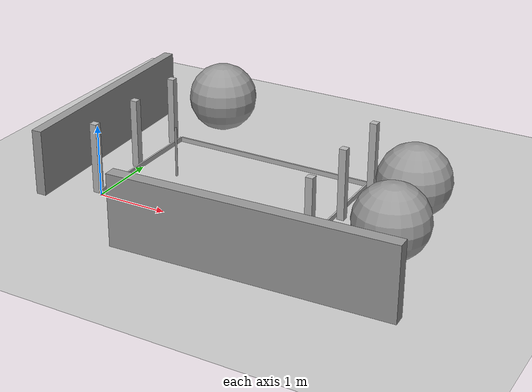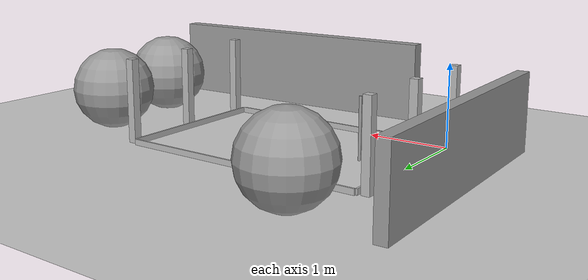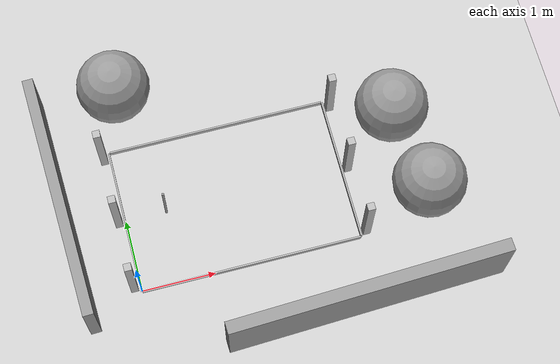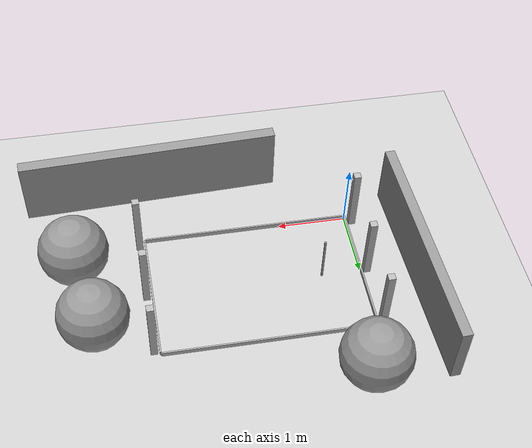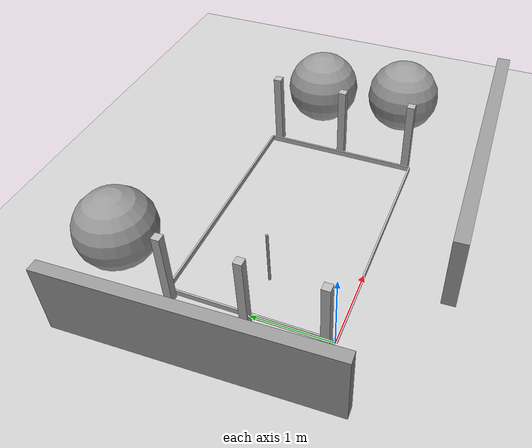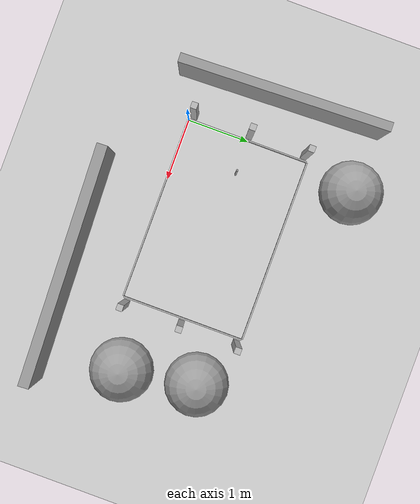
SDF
<sdf version="1.7">
 <world name="bordered_world">
  <model name="ground_plane">
   <static>1</static>
   <link name="link">
    <collision name="collision">
     <geometry><plane><normal>0 0 1</normal><size>100 100</size></plane></geometry>
     <surface><friction><ode><mu>100</mu><mu2>50</mu2></ode></friction></surface>
    </collision>
    <visual name="visual">
     <cast_shadows>0</cast_shadows>
     <geometry><plane><normal>0 0 1</normal><size>100 100</size></plane></geometry>
     <material>
      <script><uri>file://media/materials/scripts/gazebo.material</uri><name>Gazebo/Grey</name></script>
     </material>
    </visual>
   </link>
  </model>
  <light name="sun" type="directional">
   <pose>0 0 10 0 -0 0</pose>
   <diffuse>0.8 0.8 0.8 1</diffuse>
   <specular>0.2 0.2 0.2 1</specular>
   <attenuation>
    <range>1000</range>
    <constant>0.9</constant>
    <linear>0.01</linear>
    <quadratic>0.001</quadratic>
   </attenuation>
   <direction>-0.5 0.1 -0.9</direction>
   <spot><inner_angle>0</inner_angle><outer_angle>0</outer_angle><falloff>0</falloff></spot>
  </light>
  <model name="wall_north">
   <static>1</static>
   <link name="link">
    <collision name="collision">
     <geometry><box><size>3 0.022 0.07</size></box></geometry>
     <collide_bitmask>0</collide_bitmask>
    </collision>
    <visual name="visual">
     <geometry><box><size>3 0.022 0.07</size></box><material><ambient>0.7 0.7 0.7 1</ambient></material></geometry>
    </visual>
    <pose>1.5 2.011 0.035 0 -0 0</pose>
   </link>
  </model>
  <model name="wall_south">
   <static>1</static>
   <link name="link">
    <collision name="collision">
     <geometry><box><size>3 0.022 0.07</size></box></geometry>
     <collide_bitmask>0</collide_bitmask>
    </collision>
    <visual name="visual">
     <geometry><box><size>3 0.022 0.07</size></box><material><ambient>0.7 0.7 0.7 1</ambient></material></geometry>
    </visual>
    <pose>1.5 -0.011 0.035 0 -0 0</pose>
   </link>
  </model>
  <model name="wall_east">
   <static>1</static>
   <link name="link">
    <collision name="collision">
     <geometry><box><size>0.022 2 0.07</size></box></geometry>
     <collide_bitmask>0</collide_bitmask>
    </collision>
    <visual name="visual">
     <geometry><box><size>0.022 2 0.07</size></box><material><ambient>0.7 0.7 0.7 1</ambient></material></geometry>
    </visual>
    <pose>3.011 1 0.035 0 -0 0</pose>
   </link>
  </model>
  <model name="wall_west">
   <static>1</static>
   <link name="link">
    <collision name="collision">
     <geometry><box><size>0.022 2 0.07</size></box></geometry>
     <collide_bitmask>0</collide_bitmask>
    </collision>
    <visual name="visual">
     <geometry><box><size>0.022 2 0.07</size></box><material><ambient>0.7 0.7 0.7 1</ambient></material></geometry>
    </visual>
    <pose>-0.011 1 0.035 0 -0 0</pose>
   </link>
  </model>
  <model name="pole_southwest">
   <static>1</static>
   <link name="link">
    <collision name="collision"><geometry><box><size>0.1 0.1 1</size></box></geometry></collision>
    <visual name="visual"><geometry><box><size>0.1 0.1 1</size></box></geometry></visual>
    <pose>-0.094 0.07 0.5 0 -0 0</pose>
   </link>
  </model>
  <model name="pole_southeast">
   <static>1</static>
   <link name="link">
    <collision name="collision"><geometry><box><size>0.1 0.1 1</size></box></geometry></collision>
    <visual name="visual"><geometry><box><size>0.1 0.1 1</size></box></geometry></visual>
    <pose>3.094 0.07 0.5 0 -0 0</pose>
   </link>
  </model>
  <model name="pole_northwest">
   <static>1</static>
   <link name="link">
    <collision name="collision"><geometry><box><size>0.1 0.1 1</size></box></geometry></collision>
    <visual name="visual"><geometry><box><size>0.1 0.1 1</size></box></geometry></visual>
    <pose>-0.094 1.93 0.5 0 -0 0</pose>
   </link>
  </model>
  <model name="pole_northeast">
   <static>1</static>
   <link name="link">
    <collision name="collision"><geometry><box><size>0.1 0.1 1</size></box></geometry></collision>
    <visual name="visual"><geometry><box><size>0.1 0.1 1</size></box></geometry></visual>
    <pose>3.094 1.93 0.5 0 -0 0</pose>
   </link>
  </model>
  <model name="pole_middleast">
   <static>1</static>
   <link name="link">
    <collision name="collision"><geometry><box><size>0.1 0.1 1</size></box></geometry></collision>
    <visual name="visual"><geometry><box><size>0.1 0.1 1</size></box></geometry></visual>
    <pose>3.094 1 0.5 0 -0 0</pose>
   </link>
  </model>
  <model name="pole_middlewest">
   <static>1</static>
   <link name="link">
    <collision name="collision"><geometry><box><size>0.1 0.1 1</size></box></geometry></collision>
    <visual name="visual"><geometry><box><size>0.1 0.1 1</size></box></geometry></visual>
    <pose>-0.094 1 0.5 0 -0 0</pose>
   </link>
  </model>
  <model name="unit_box">
   <pose>-0.761508 1.27659 0.465507 0.000196 -7e-06 0.033747</pose>
   <link name="link">
    <inertial>
     <mass>1</mass>
     <inertia>
      <ixx>0.166667</ixx>
      <ixy>0</ixy>
      <ixz>0</ixz>
      <iyy>0.166667</iyy>
      <iyz>0</iyz>
      <izz>0.166667</izz>
     </inertia>
    </inertial>
    <collision name="collision"><geometry><box><size>0.14436 3.34598 0.931667</size></box></geometry></collision>
    <visual name="visual">
     <geometry><box><size>0.14436 3.34598 0.931667</size></box></geometry>
     <material>
      <script><name>Gazebo/Grey</name><uri>file://media/materials/scripts/gazebo.material</uri></script>
     </material>
    </visual>
   </link>
  </model>
  <model name="unit_box_0">
   <pose>2.80684 -0.934959 0.499434 1.1e-05 0.0003 0.038294</pose>
   <link name="link">
    <inertial>
     <mass>1</mass>
     <inertia>
      <ixx>0.166667</ixx>
      <ixy>0</ixy>
      <ixz>0</ixz>
      <iyy>0.166667</iyy>
      <iyz>0</iyz>
      <izz>0.166667</izz>
     </inertia>
    </inertial>
    <collision name="collision"><geometry><box><size>3.78137 0.17094 1</size></box></geometry></collision>
    <visual name="visual">
     <geometry><box><size>3.78137 0.17094 1</size></box></geometry>
     <material>
      <script><name>Gazebo/Grey</name><uri>file://media/materials/scripts/gazebo.material</uri></script>
     </material>
    </visual>
   </link>
  </model>
  <model name="unit_sphere">
   <pose>0.262083 2.76598 0.5 0 -0 0</pose>
   <link name="link">
    <inertial>
     <mass>1</mass>
     <inertia><ixx>0.1</ixx><ixy>0</ixy><ixz>0</ixz><iyy>0.1</iyy><iyz>0</iyz><izz>0.1</izz></inertia>
    </inertial>
    <collision name="collision"><geometry><sphere><radius>0.5</radius></sphere></geometry></collision>
    <visual name="visual">
     <geometry><sphere><radius>0.5</radius></sphere></geometry>
     <material>
      <script><name>Gazebo/Grey</name><uri>file://media/materials/scripts/gazebo.material</uri></script>
     </material>
    </visual>
   </link>
  </model>
  <model name="unit_sphere_0">
   <pose>3.84666 1.54965 0.5 0 -0 0</pose>
   <link name="link">
    <inertial>
     <mass>1</mass>
     <inertia><ixx>0.1</ixx><ixy>0</ixy><ixz>0</ixz><iyy>0.1</iyy><iyz>0</iyz><izz>0.1</izz></inertia>
    </inertial>
    <collision name="collision"><geometry><sphere><radius>0.5</radius></sphere></geometry></collision>
    <visual name="visual">
     <geometry><sphere><radius>0.5</radius></sphere></geometry>
     <material>
      <script><name>Gazebo/Grey</name><uri>file://media/materials/scripts/gazebo.material</uri></script>
     </material>
    </visual>
   </link>
  </model>
  <model name="unit_sphere_1">
   <pose>4.03202 0.388904 0.5 0.010918 0.006903 -0.000954</pose>
   <link name="link">
    <inertial>
     <mass>1</mass>
     <inertia><ixx>0.1</ixx><ixy>0</ixy><ixz>0</ixz><iyy>0.1</iyy><iyz>0</iyz><izz>0.1</izz></inertia>
    </inertial>
    <collision name="collision"><geometry><sphere><radius>0.5</radius></sphere></geometry></collision>
    <visual name="visual">
     <geometry><sphere><radius>0.5</radius></sphere></geometry>
     <material>
      <script><name>Gazebo/Grey</name><uri>file://media/materials/scripts/gazebo.material</uri></script>
     </material>
    </visual>
   </link>
  </model>
  <model name="unit_cylinder_0">
   <pose>0.561571 1.00241 0.364676 -1e-06 -2e-06 -0.000201</pose>
   <link name="link">
    <inertial>
     <mass>1</mass>
     <inertia><ixx>0.145833</ixx><ixy>0</ixy><ixz>0</ixz><iyy>0.145833</iyy><iyz>0</iyz><izz>0.125</izz></inertia>
    </inertial>
    <collision name="collision">
     <geometry><cylinder><radius>0.0161774</radius><length>0.72937</length></cylinder></geometry>
    </collision>
    <visual name="visual">
     <geometry><cylinder><radius>0.0161774</radius><length>0.72937</length></cylinder></geometry>
     <material>
      <script><name>Gazebo/Grey</name><uri>file://media/materials/scripts/gazebo.material</uri></script>
     </material>
    </visual>
   </link>
  </model>
  <light name="spotlight" type="spot">
   <pose>2.7 0.5 1 0 -0 0</pose>
   <diffuse>1 0.8 0.6 1</diffuse>
   <specular>1 0.8 0.6 1</specular>
   <attenuation>
    <range>10</range>
    <constant>0.5</constant>
    <linear>0.01</linear>
    <quadratic>0.001</quadratic>
   </attenuation>
   <direction>0 0 -1</direction>
   <spot><inner_angle>0.1</inner_angle><outer_angle>0.4</outer_angle><falloff>0.5</falloff></spot>
  </light>
  <light name="spotlight2" type="spot">
   <pose>0.4 1.6 1 0 -0 0</pose>
   <diffuse>1 0.8 0.6 1</diffuse>
   <specular>1 0.8 0.6 1</specular>
   <attenuation>
    <range>10</range>
    <constant>0.5</constant>
    <linear>0.01</linear>
    <quadratic>0.001</quadratic>
   </attenuation>
   <direction>0 0 -1</direction>
   <spot><inner_angle>0.1</inner_angle><outer_angle>0.4</outer_angle><falloff>0.5</falloff></spot>
  </light>
  <gravity>0 0 -9.8</gravity>
  <magnetic_field>6e-06 2.3e-05 -4.2e-05</magnetic_field>
  <atmosphere type="adiabatic"/>
  <physics type="ode">
   <max_step_size>0.001</max_step_size>
   <real_time_factor>1</real_time_factor>
   <real_time_update_rate>1000</real_time_update_rate>
  </physics>
  <scene><ambient>0.4 0.4 0.4 1</ambient><background>0.7 0.7 0.7 1</background><shadows>1</shadows></scene>
  <audio><device>default</device></audio>
  <spherical_coordinates>
   <surface_model>EARTH_WGS84</surface_model>
   <latitude_deg>0</latitude_deg>
   <longitude_deg>0</longitude_deg>
   <elevation>0</elevation>
   <heading_deg>0</heading_deg>
  </spherical_coordinates>
 </world>
</sdf>
